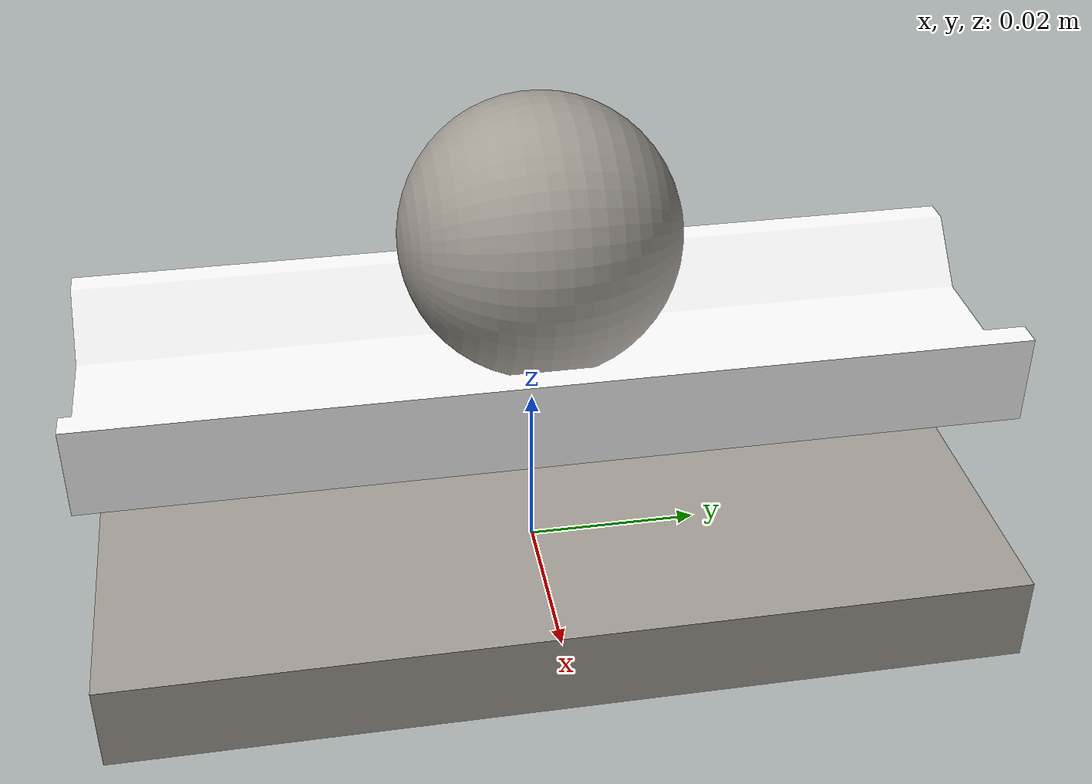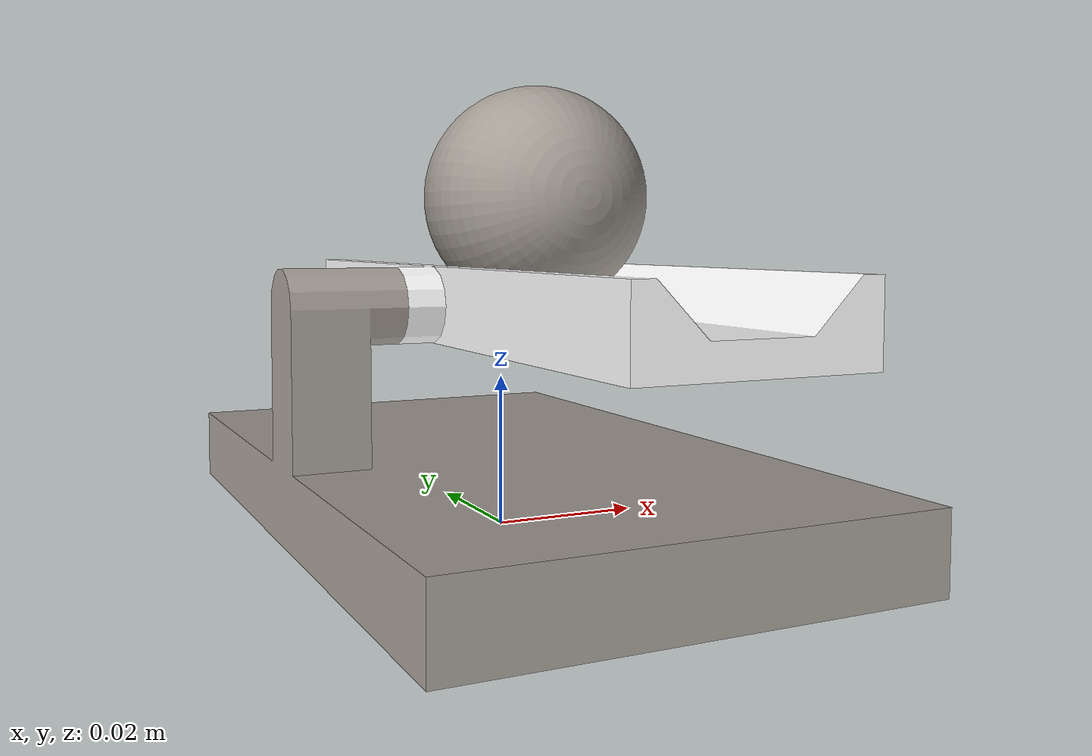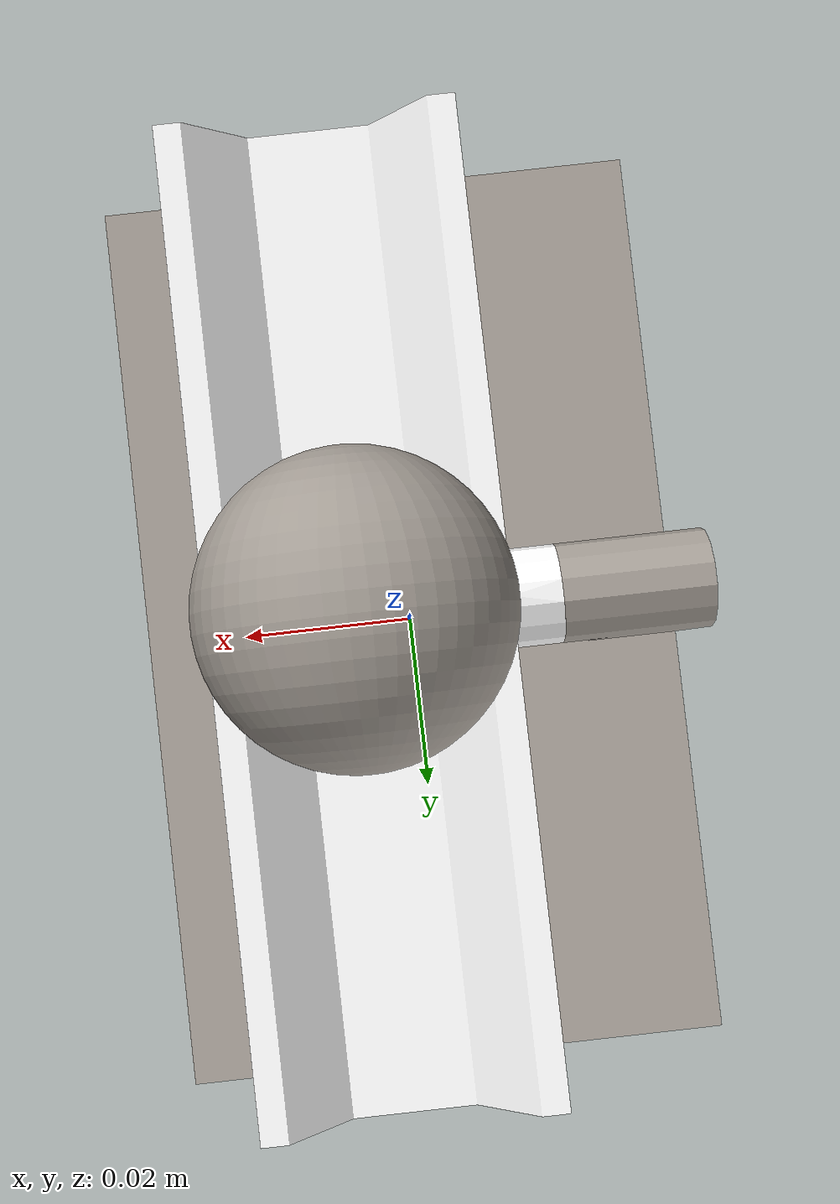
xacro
<?xml version="1.0"?>
<robot xmlns:xacro="http://www.ros.org/wiki/xacro" name="a01_balance">

  <xacro:include filename="$(find a01_balance_1dof)/urdf/a01_balance_1dof.xacro"/>

  <gazebo reference="track">
    <sensor name="track_imu" type="imu">
      <always_on>true</always_on>
      <update_rate>200</update_rate>
      <topic>/imu</topic>
      <visualize>false</visualize>
    </sensor>
  </gazebo>

  <gazebo reference="track">
    <mu1>0.45</mu1>
    <mu2>0.45</mu2>
  </gazebo>

  <gazebo reference="ball">
    <mu1>0.45</mu1>
    <mu2>0.45</mu2>
  </gazebo>

  <gazebo>
    <plugin
      filename="gz-sim-joint-state-publisher-system"
      name="gz::sim::systems::JointStatePublisher"/>
  </gazebo>

  <gazebo>
    <plugin
      filename="gz-sim-joint-controller-system"
      name="gz::sim::systems::JointController">
      <joint_name>joint_track</joint_name>
      <use_force_commands>false</use_force_commands>
      <p_gain>1.6</p_gain>
      <i_gain>0.08</i_gain>
      <d_gain>0.02</d_gain>
      <i_max>0.6</i_max>
      <i_min>-0.6</i_min>
      <cmd_max>6.0</cmd_max>
      <cmd_min>-6.0</cmd_min>
    </plugin>
  </gazebo>

</robot>

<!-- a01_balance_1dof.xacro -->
<robot
  name="a01_balance_1dof">
  <link
    name="base_link">
    <inertial>
      <origin
        xyz="-0.00106343239011507 5.85545725779782E-18 0.00580359362821475"
        rpy="0 0 0" />
      <mass
        value="0.50228318530718" />
      <inertia
        ixx="0.000412277095965459"
        ixy="2.74068363995885E-20"
        ixz="9.0447164254581E-06"
        iyy="0.000168633359120358"
        iyz="-3.59318872793803E-21"
        izz="0.000556701469637907" />
    </inertial>
    <visual>
      <origin
        xyz="0 0 0"
        rpy="0 0 0" />
      <geometry>
        <mesh
          filename="package://a01_balance_1dof/meshes/visual/base_link.STL" />
      </geometry>
      <material
        name="">
        <color
          rgba="0.647058823529412 0.619607843137255 0.588235294117647 1" />
      </material>
    </visual>
    <collision>
      <origin
        xyz="0 0 0"
        rpy="0 0 0" />
      <geometry>
        <mesh
          filename="package://a01_balance_1dof/meshes/collision/base_link.STL" />
      </geometry>
    </collision>
  </link>
  <link
    name="track">
    <inertial>
      <origin
        xyz="0.019644889683078 -1.44050434061854E-17 -0.00132545061482008"
        rpy="0 0 0" />
      <mass
        value="0.0197235920581627" />
      <inertia
        ixx="1.6234036872221E-05"
        ixy="-2.62014793277014E-21"
        ixz="8.9048961031769E-09"
        iyy="2.19211207038962E-06"
        iyz="1.62226521198398E-21"
        izz="1.81681471028436E-05" />
    </inertial>
    <visual>
      <origin
        xyz="0 0 0"
        rpy="0 0 0" />
      <geometry>
        <mesh
          filename="package://a01_balance_1dof/meshes/visual/track.STL" />
      </geometry>
      <material
        name="">
        <color
          rgba="1 1 1 1" />
      </material>
    </visual>
    <collision>
      <origin
        xyz="0 0 0"
        rpy="0 0 0" />
      <geometry>
        <mesh
          filename="package://a01_balance_1dof/meshes/collision/track.STL" />
      </geometry>
    </collision>
  </link>
  <joint
    name="joint_track"
    type="revolute">
    <origin
      xyz="-0.015006 0 0.029997"
      rpy="0 0 0" />
    <parent
      link="base_link" />
    <child
      link="track" />
    <axis
      xyz="1 0 0.00021492" />
    <limit
      lower="-0.13"
      upper="0.13"
      effort="0"
      velocity="0" />
  </joint>
  <link
    name="ball">
    <inertial>
      <origin
        xyz="-5.20417042793042E-17 -2.0937362746534E-18 2.77555756156289E-17"
        rpy="0 0 0" />
      <mass
        value="0.113097335529233" />
      <inertia
        ixx="1.01787601976309E-05"
        ixy="-2.10654947922633E-24"
        ixz="3.17637355220363E-22"
        iyy="1.01787601976309E-05"
        iyz="1.15183380038738E-23"
        izz="1.01787601976309E-05" />
    </inertial>
    <visual>
      <origin
        xyz="0 0 0"
        rpy="0 0 0" />
      <geometry>
        <mesh
          filename="package://a01_balance_1dof/meshes/visual/ball.STL" />
      </geometry>
      <material
        name="">
        <color
          rgba="0.647058823529412 0.619607843137255 0.588235294117647 1" />
      </material>
    </visual>
    <collision>
      <origin
        xyz="0 0 0"
        rpy="0 0 0" />
      <geometry>
        <mesh
          filename="package://a01_balance_1dof/meshes/collision/ball.STL" />
      </geometry>
    </collision>
  </link>
  <joint
    name="joint_ball"
    type="prismatic">
    <origin
      xyz="0.019997 0 0.014004"
      rpy="0 0 0" />
    <parent
      link="track" />
    <child
      link="ball" />
    <axis
      xyz="0 1 0" />
    <limit
      lower="-0.05"
      upper="0.05"
      effort="0"
      velocity="0" />
  </joint>
</robot>
